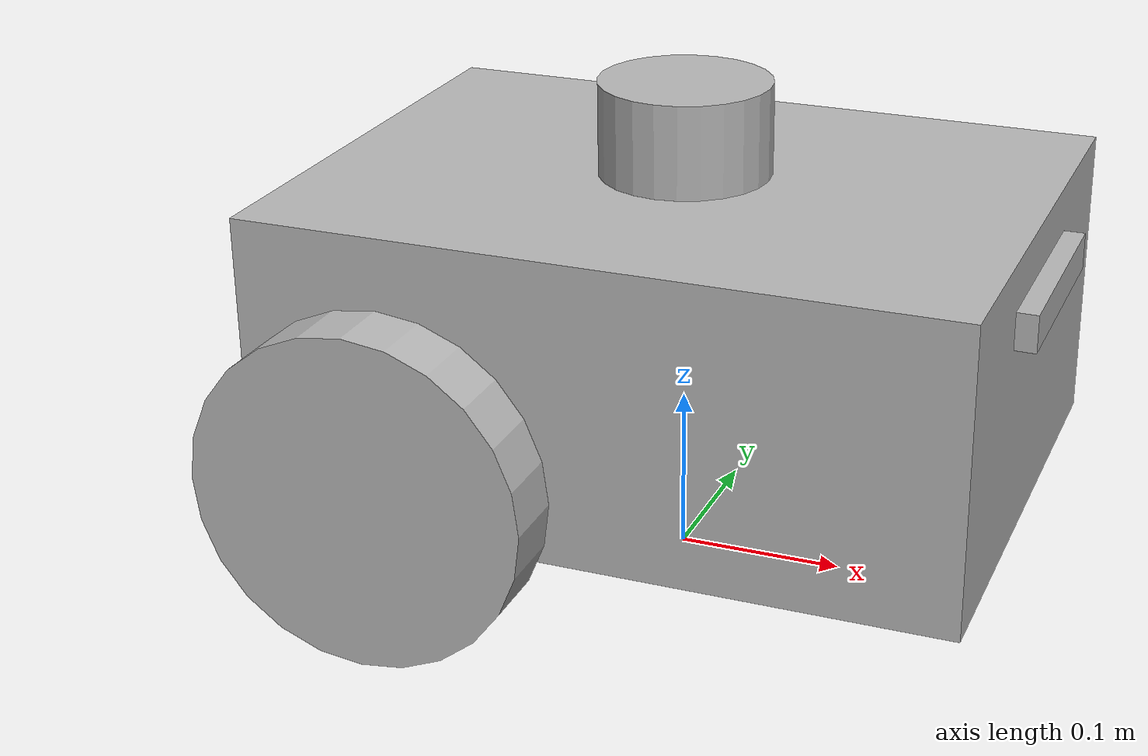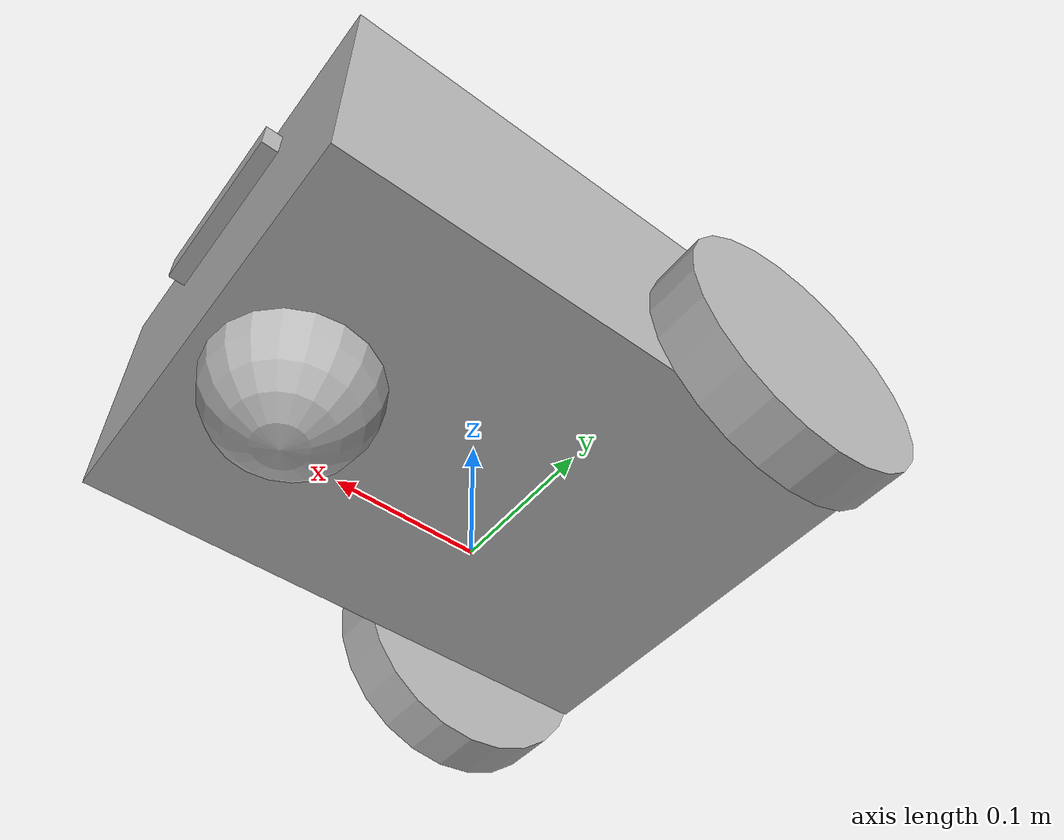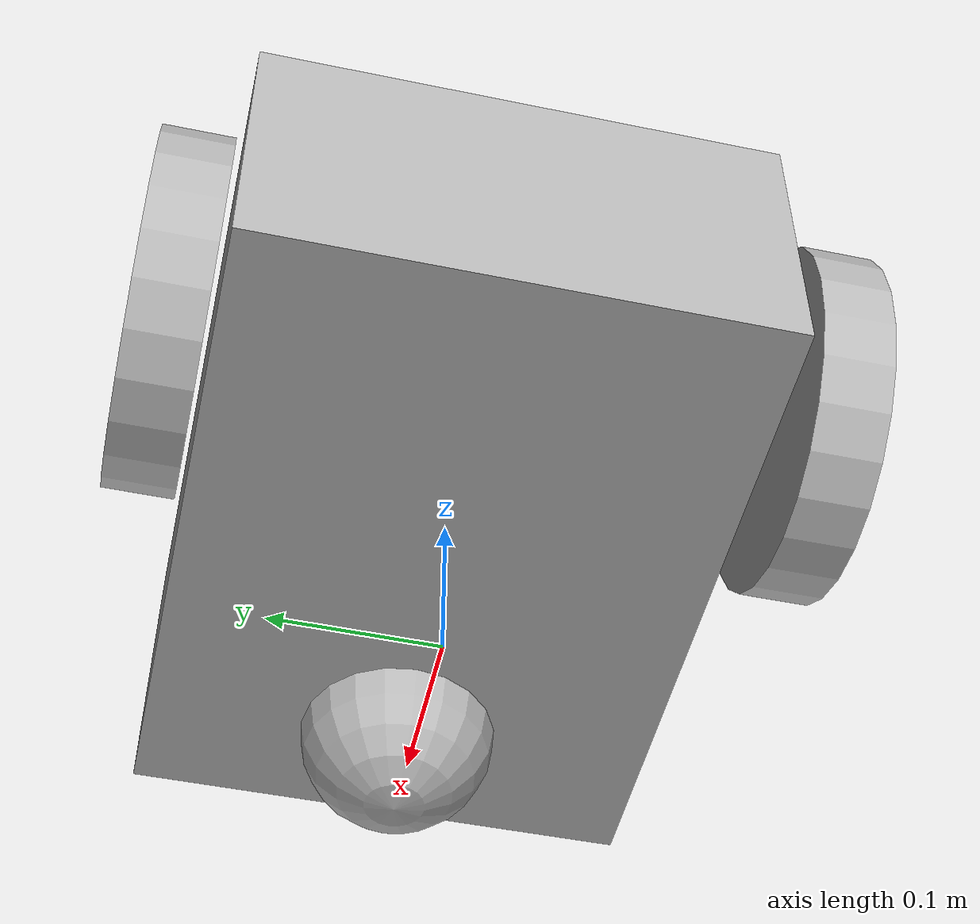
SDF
<sdf version='1.7'>
  <model name='sam_bot'>
    <link name='base_footprint'>
      <inertial>
        <pose>0.004919 0 0.148271 1.5708 -0 1.5708</pose>
        <mass>15.76</mass>
        <inertia>
          <ixx>0.280824</ixx>
          <ixy>1.64009e-18</ixy>
          <ixz>-3.12639e-18</ixz>
          <iyy>0.354548</iyy>
          <iyz>0.0057897</iyz>
          <izz>0.169412</izz>
        </inertia>
      </inertial>
      <collision name='base_footprint_fixed_joint_lump__base_link_collision'>
        <pose>0 0 0.15 0 -0 0</pose>
        <geometry>
          <box>
            <size>0.42 0.31 0.18</size>
          </box>
        </geometry>
      </collision>
      <collision name='base_footprint_fixed_joint_lump__camera_link_collision_1'>
        <pose>0.215 0 0.2 0 -0 0</pose>
        <geometry>
          <box>
            <size>0.015 0.13 0.022</size>
          </box>
        </geometry>
        <surface>
          <contact>
            <ode/>
          </contact>
          <friction>
            <ode/>
          </friction>
        </surface>
      </collision>
      <collision name='base_footprint_fixed_joint_lump__front_caster_collision_2'>
        <pose>0.14 0 0.06 0 -0 0</pose>
        <geometry>
          <sphere>
            <radius>0.06</radius>
          </sphere>
        </geometry>
      </collision>
      <collision name='base_footprint_fixed_joint_lump__imu_link_collision_3'>
        <pose>0 0 0.16 0 -0 0</pose>
        <geometry>
          <box>
            <size>0.1 0.1 0.1</size>
          </box>
        </geometry>
        <surface>
          <contact>
            <ode/>
          </contact>
          <friction>
            <ode/>
          </friction>
        </surface>
      </collision>
      <collision name='base_footprint_fixed_joint_lump__lidar_link_collision_4'>
        <pose>0 0 0.27 0 -0 0</pose>
        <geometry>
          <cylinder>
            <length>0.055</length>
            <radius>0.0508</radius>
          </cylinder>
        </geometry>
        <surface>
          <contact>
            <ode/>
          </contact>
          <friction>
            <ode/>
          </friction>
        </surface>
      </collision>
      <visual name='base_footprint_fixed_joint_lump__base_link_visual'>
        <pose>0 0 0.15 0 -0 0</pose>
        <geometry>
          <box>
            <size>0.42 0.31 0.18</size>
          </box>
        </geometry>
      </visual>
      <visual name='base_footprint_fixed_joint_lump__camera_link_visual_1'>
        <pose>0.215 0 0.2 0 -0 0</pose>
        <geometry>
          <box>
            <size>0.015 0.13 0.022</size>
          </box>
        </geometry>
      </visual>
      <visual name='base_footprint_fixed_joint_lump__front_caster_visual_2'>
        <pose>0.14 0 0.06 0 -0 0</pose>
        <geometry>
          <sphere>
            <radius>0.06</radius>
          </sphere>
        </geometry>
      </visual>
      <visual name='base_footprint_fixed_joint_lump__imu_link_visual_3'>
        <pose>0 0 0.16 0 -0 0</pose>
        <geometry>
          <box>
            <size>0.1 0.1 0.1</size>
          </box>
        </geometry>
      </visual>
      <visual name='base_footprint_fixed_joint_lump__lidar_link_visual_4'>
        <pose>0 0 0.27 0 -0 0</pose>
        <geometry>
          <cylinder>
            <length>0.055</length>
            <radius>0.0508</radius>
          </cylinder>
        </geometry>
      </visual>
      <sensor name='depth_camera' type='depth'>
        <visualize>1</visualize>
        <update_rate>30</update_rate>
        <camera name='camera'>
          <horizontal_fov>1.0472</horizontal_fov>
          <image>
            <width>640</width>
            <height>480</height>
            <format>R8G8B8</format>
          </image>
          <clip>
            <near>0.05</near>
            <far>3</far>
          </clip>
        </camera>
        <plugin name='depth_camera_controller' filename='libgazebo_ros_camera.so'>
          <baseline>0.2</baseline>
          <alwaysOn>1</alwaysOn>
          <updateRate>0.0</updateRate>
          <frame_name>camera_depth_frame</frame_name>
          <pointCloudCutoff>0.5</pointCloudCutoff>
          <pointCloudCutoffMax>3.0</pointCloudCutoffMax>
          <distortionK1>0</distortionK1>
          <distortionK2>0</distortionK2>
          <distortionK3>0</distortionK3>
          <distortionT1>0</distortionT1>
          <distortionT2>0</distortionT2>
          <CxPrime>0</CxPrime>
          <Cx>0</Cx>
          <Cy>0</Cy>
          <focalLength>0</focalLength>
          <hackBaseline>0</hackBaseline>
        </plugin>
        <pose>0.215 0 0.2 0 -0 0</pose>
      </sensor>
      <sensor name='imu_sensor' type='imu'>
        <plugin name='imu_plugin' filename='libgazebo_ros_imu_sensor.so'>
          <ros>
            <remapping>~/out:=imu</remapping>
          </ros>
          <initial_orientation_as_reference>0</initial_orientation_as_reference>
        </plugin>
        <always_on>1</always_on>
        <update_rate>100</update_rate>
        <visualize>1</visualize>
        <imu>
          <angular_velocity>
            <x>
              <noise type='gaussian'>
                <mean>0</mean>
                <stddev>0.0002</stddev>
                <bias_mean>7.5e-06</bias_mean>
                <bias_stddev>8e-07</bias_stddev>
              </noise>
            </x>
            <y>
              <noise type='gaussian'>
                <mean>0</mean>
                <stddev>0.0002</stddev>
                <bias_mean>7.5e-06</bias_mean>
                <bias_stddev>8e-07</bias_stddev>
              </noise>
            </y>
            <z>
              <noise type='gaussian'>
                <mean>0</mean>
                <stddev>0.0002</stddev>
                <bias_mean>7.5e-06</bias_mean>
                <bias_stddev>8e-07</bias_stddev>
              </noise>
            </z>
          </angular_velocity>
          <linear_acceleration>
            <x>
              <noise type='gaussian'>
                <mean>0</mean>
                <stddev>0.017</stddev>
                <bias_mean>0.1</bias_mean>
                <bias_stddev>0.001</bias_stddev>
              </noise>
            </x>
            <y>
              <noise type='gaussian'>
                <mean>0</mean>
                <stddev>0.017</stddev>
                <bias_mean>0.1</bias_mean>
                <bias_stddev>0.001</bias_stddev>
              </noise>
            </y>
            <z>
              <noise type='gaussian'>
                <mean>0</mean>
                <stddev>0.017</stddev>
                <bias_mean>0.1</bias_mean>
                <bias_stddev>0.001</bias_stddev>
              </noise>
            </z>
          </linear_acceleration>
        </imu>
        <pose>0 0 0.16 0 -0 0</pose>
      </sensor>
      <sensor name='lidar' type='ray'>
        <always_on>1</always_on>
        <visualize>1</visualize>
        <update_rate>5</update_rate>
        <ray>
          <scan>
            <horizontal>
              <samples>360</samples>
              <resolution>1</resolution>
              <min_angle>0</min_angle>
              <max_angle>6.28</max_angle>
            </horizontal>
          </scan>
          <range>
            <min>0.12</min>
            <max>3.5</max>
            <resolution>0.015</resolution>
          </range>
          <noise>
            <type>gaussian</type>
            <mean>0</mean>
            <stddev>0.01</stddev>
          </noise>
        </ray>
        <plugin name='scan' filename='libgazebo_ros_ray_sensor.so'>
          <ros>
            <remapping>~/out:=scan</remapping>
          </ros>
          <output_type>sensor_msgs/LaserScan</output_type>
          <frame_name>lidar_link</frame_name>
        </plugin>
        <pose>0 0 0.27 0 -0 0</pose>
      </sensor>
    </link>
    <joint name='drivewhl_l_joint' type='revolute'>
      <pose relative_to='base_footprint'>-0.12 0.18 0.1 0 -0 0</pose>
      <parent>base_footprint</parent>
      <child>drivewhl_l_link</child>
      <axis>
        <xyz>0 1 0</xyz>
        <limit>
          <lower>-1e+16</lower>
          <upper>1e+16</upper>
        </limit>
        <dynamics>
          <spring_reference>0</spring_reference>
          <spring_stiffness>0</spring_stiffness>
        </dynamics>
      </axis>
    </joint>
    <link name='drivewhl_l_link'>
      <pose relative_to='drivewhl_l_joint'>0 0 0 0 -0 0</pose>
      <inertial>
        <pose>0 0 0 1.5708 -0 0</pose>
        <mass>0.5</mass>
        <inertia>
          <ixx>0.00131667</ixx>
          <ixy>0</ixy>
          <ixz>0</ixz>
          <iyy>0.00131667</iyy>
          <iyz>0</iyz>
          <izz>0.0025</izz>
        </inertia>
      </inertial>
      <collision name='drivewhl_l_link_collision'>
        <pose>0 0 0 1.5708 -0 0</pose>
        <geometry>
          <cylinder>
            <length>0.04</length>
            <radius>0.1</radius>
          </cylinder>
        </geometry>
      </collision>
      <visual name='drivewhl_l_link_visual'>
        <pose>0 0 0 1.5708 -0 0</pose>
        <geometry>
          <cylinder>
            <length>0.04</length>
            <radius>0.1</radius>
          </cylinder>
        </geometry>
      </visual>
    </link>
    <joint name='drivewhl_r_joint' type='revolute'>
      <pose relative_to='base_footprint'>-0.12 -0.18 0.1 0 -0 0</pose>
      <parent>base_footprint</parent>
      <child>drivewhl_r_link</child>
      <axis>
        <xyz>0 1 0</xyz>
        <limit>
          <lower>-1e+16</lower>
          <upper>1e+16</upper>
        </limit>
        <dynamics>
          <spring_reference>0</spring_reference>
          <spring_stiffness>0</spring_stiffness>
        </dynamics>
      </axis>
    </joint>
    <link name='drivewhl_r_link'>
      <pose relative_to='drivewhl_r_joint'>0 0 0 0 -0 0</pose>
      <inertial>
        <pose>0 0 0 1.5708 -0 0</pose>
        <mass>0.5</mass>
        <inertia>
          <ixx>0.00131667</ixx>
          <ixy>0</ixy>
          <ixz>0</ixz>
          <iyy>0.00131667</iyy>
          <iyz>0</iyz>
          <izz>0.0025</izz>
        </inertia>
      </inertial>
      <collision name='drivewhl_r_link_collision'>
        <pose>0 0 0 1.5708 -0 0</pose>
        <geometry>
          <cylinder>
            <length>0.04</length>
            <radius>0.1</radius>
          </cylinder>
        </geometry>
      </collision>
      <visual name='drivewhl_r_link_visual'>
        <pose>0 0 0 1.5708 -0 0</pose>
        <geometry>
          <cylinder>
            <length>0.04</length>
            <radius>0.1</radius>
          </cylinder>
        </geometry>
      </visual>
    </link>
    <plugin name='diff_drive' filename='libgazebo_ros_diff_drive.so'>
      <ros/>
      <update_rate>30</update_rate>
      <left_joint>drivewhl_l_joint</left_joint>
      <right_joint>drivewhl_r_joint</right_joint>
      <wheel_separation>0.4</wheel_separation>
      <wheel_diameter>0.2</wheel_diameter>
      <max_wheel_torque>20</max_wheel_torque>
      <max_wheel_acceleration>1.0</max_wheel_acceleration>
      <command_topic>cmd_vel</command_topic>
      <publish_odom>1</publish_odom>
      <publish_odom_tf>1</publish_odom_tf>
      <publish_wheel_tf>1</publish_wheel_tf>
      <odometry_topic>odom</odometry_topic>
      <odometry_frame>odom</odometry_frame>
      <robot_base_frame>base_footprint</robot_base_frame>
    </plugin>
    <plugin name='sambot_joint_state' filename='libgazebo_ros_joint_state_publisher.so'>
      <ros>
        <remapping>~/out:=joint_states</remapping>
      </ros>
      <update_rate>30</update_rate>
      <joint_name>drivewhl_l_joint</joint_name>
      <joint_name>drivewhl_r_joint</joint_name>
    </plugin>
    <frame name='camera_depth_joint' attached_to='camera_link'>
      <pose>0 0 0 -1.5708 -0 -1.5708</pose>
    </frame>
    <frame name='camera_depth_frame' attached_to='camera_depth_joint'/>
    <frame name='camera_joint' attached_to='base_link'>
      <pose>0.215 0 0.05 0 -0 0</pose>
    </frame>
    <frame name='camera_link' attached_to='camera_joint'/>
    <frame name='caster_joint' attached_to='base_link'>
      <pose>0.14 0 -0.09 0 -0 0</pose>
    </frame>
    <frame name='front_caster' attached_to='caster_joint'/>
    <frame name='imu_joint' attached_to='base_link'>
      <pose>0 0 0.01 0 -0 0</pose>
    </frame>
    <frame name='imu_link' attached_to='imu_joint'/>
    <frame name='lidar_joint' attached_to='base_link'>
      <pose>0 0 0.12 0 -0 0</pose>
    </frame>
    <frame name='lidar_link' attached_to='lidar_joint'/>
    <frame name='base_joint' attached_to='base_footprint'>
      <pose>0 0 0.15 0 -0 0</pose>
    </frame>
    <frame name='base_link' attached_to='base_joint'/>
  </model>
</sdf>
